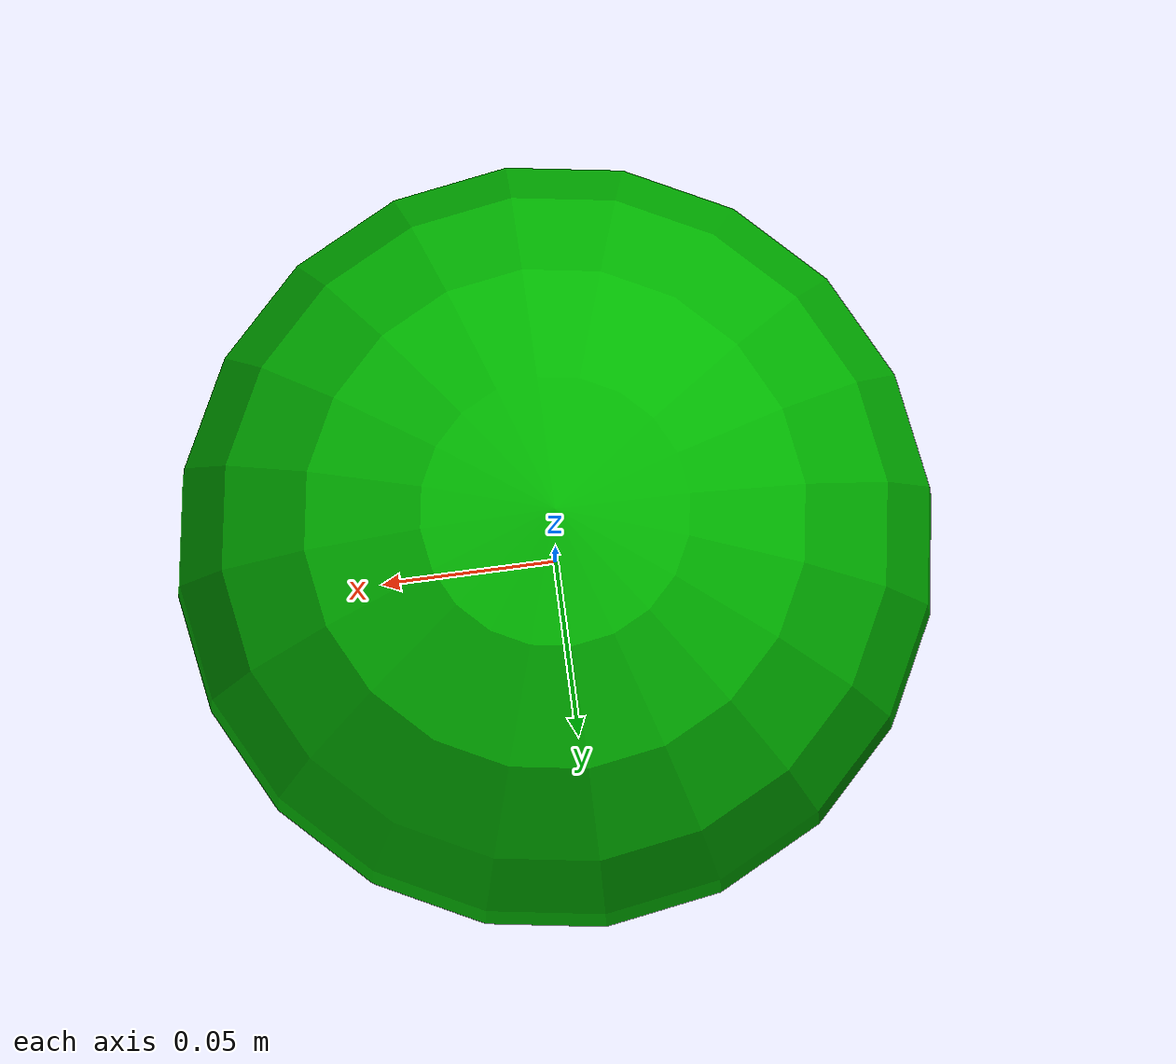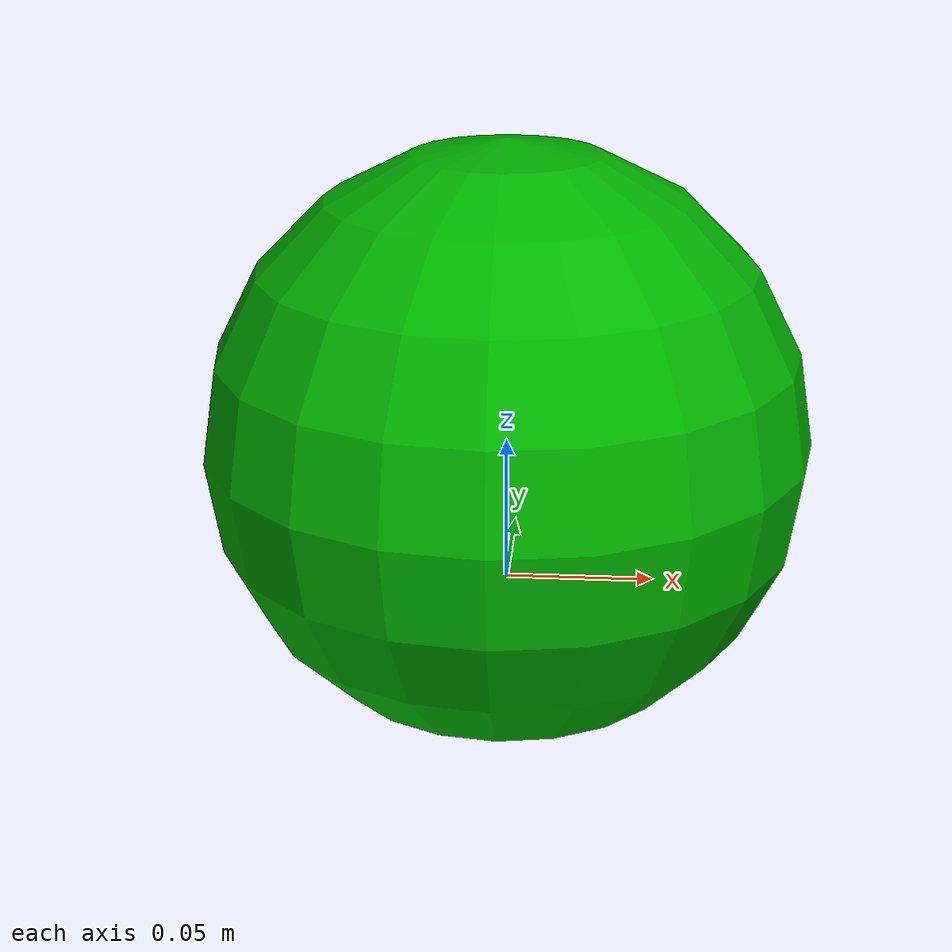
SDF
<?xml version='1.0'?>
<sdf version='1.6'>
  <model name='Small gate buoy (green)'>
    <pose>0 0 0.0508 0 -0 0</pose>
    <static>1</static>
    <link name='sphere'>
      <inertial>
        <mass>1</mass>
        <inertia>
            <ixx>0.06773</ixx>
            <ixy>0</ixy>
            <ixz>0</ixz>
            <iyy>0.06773</iyy>
            <iyz>0</iyz>
            <izz>0.06773</izz>
        </inertia>
        <pose>0 0 0 0 -0 0</pose>
      </inertial>
      <gravity>1</gravity>
      <self_collide>0</self_collide>
      <enable_wind>0</enable_wind>
      <kinematic>0</kinematic>
      <visual name='visual'>
        <geometry>
          <sphere>
            <radius>0.1016</radius>
          </sphere>
        </geometry>
        <material>
          <lighting>1</lighting>
          <script>
            <uri>file://media/materials/scripts/gazebo.material</uri>
            <name>Gazebo/Grey</name>
          </script>
          <shader type="pixel">
            <normal_map>__default__</normal_map>
          </shader>
          <ambient>0.3 0.3 0.3 1</ambient>
          <!-- Green color -->
          <diffuse>0 0.7 0 1</diffuse>
          <specular>0.01 0.01 0.01 1</specular>
          <emissive>0 0 0 1</emissive>
        </material>
        <transparency>0</transparency>
        <cast_shadows>1</cast_shadows>
      </visual>
      <collision name='collision'>
        <geometry>
          <sphere>
            <radius>0.1016</radius>
          </sphere>
        </geometry>
        <max_contacts>10</max_contacts>
        <surface>
          <friction>
            <ode>
              <mu>1</mu>
              <mu2>1</mu2>
              <fdir1>0 0 0</fdir1>
              <slip1>0</slip1>
              <slip2>0</slip2>
            </ode>
            <torsional>
              <coefficient>1</coefficient>
              <patch_radius>0</patch_radius>
              <surface_radius>0</surface_radius>
              <use_patch_radius>1</use_patch_radius>
              <ode>
                <slip>0</slip>
              </ode>
            </torsional>
          </friction>
          <bounce>
            <restitution_coefficient>0</restitution_coefficient>
            <threshold>1e+06</threshold>
          </bounce>
          <contact>
            <collide_without_contact>0</collide_without_contact>
            <collide_without_contact_bitmask>1</collide_without_contact_bitmask>
            <collide_bitmask>1</collide_bitmask>
            <ode>
              <soft_cfm>0</soft_cfm>
              <soft_erp>0.2</soft_erp>
              <kp>1e+13</kp>
              <kd>1</kd>
              <max_vel>0.01</max_vel>
              <min_depth>0</min_depth>
            </ode>
            <bullet>
              <split_impulse>1</split_impulse>
              <split_impulse_penetration_threshold>-0.01</split_impulse_penetration_threshold>
              <soft_cfm>0</soft_cfm>
              <soft_erp>0.2</soft_erp>
              <kp>1e+13</kp>
              <kd>1</kd>
            </bullet>
          </contact>
        </surface>
      </collision>
    </link>
  </model>
</sdf>
